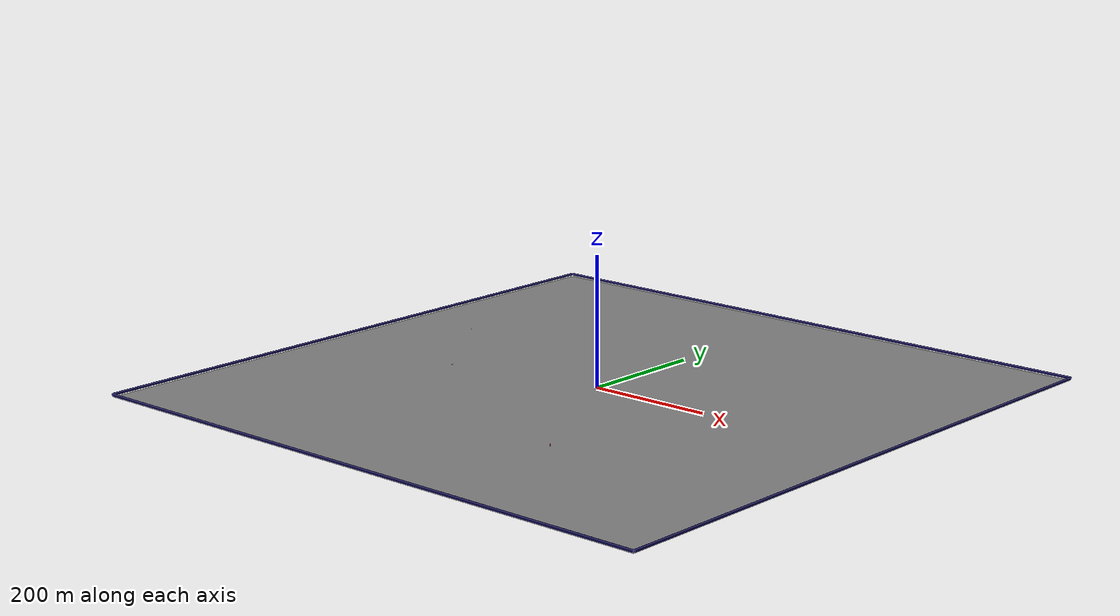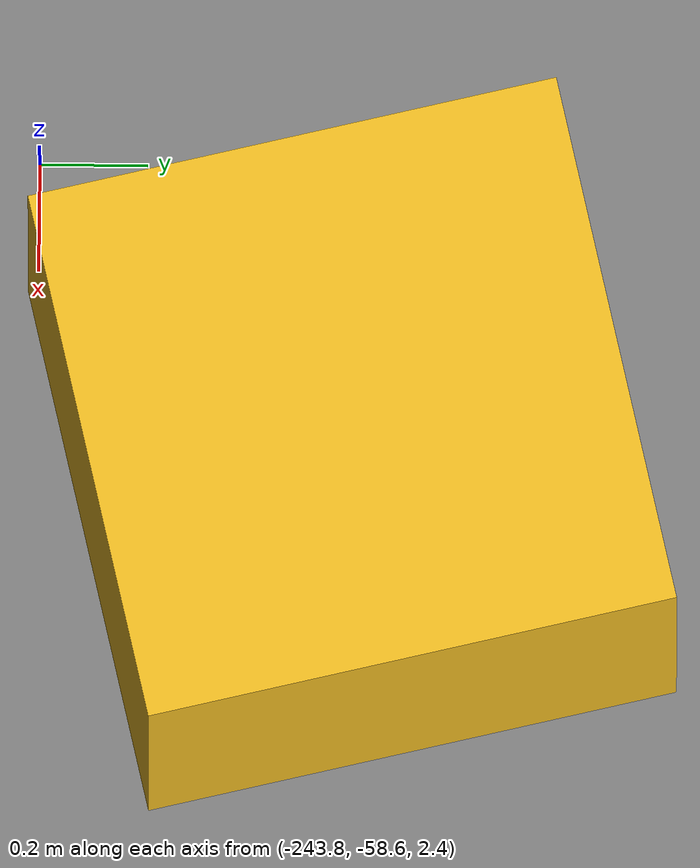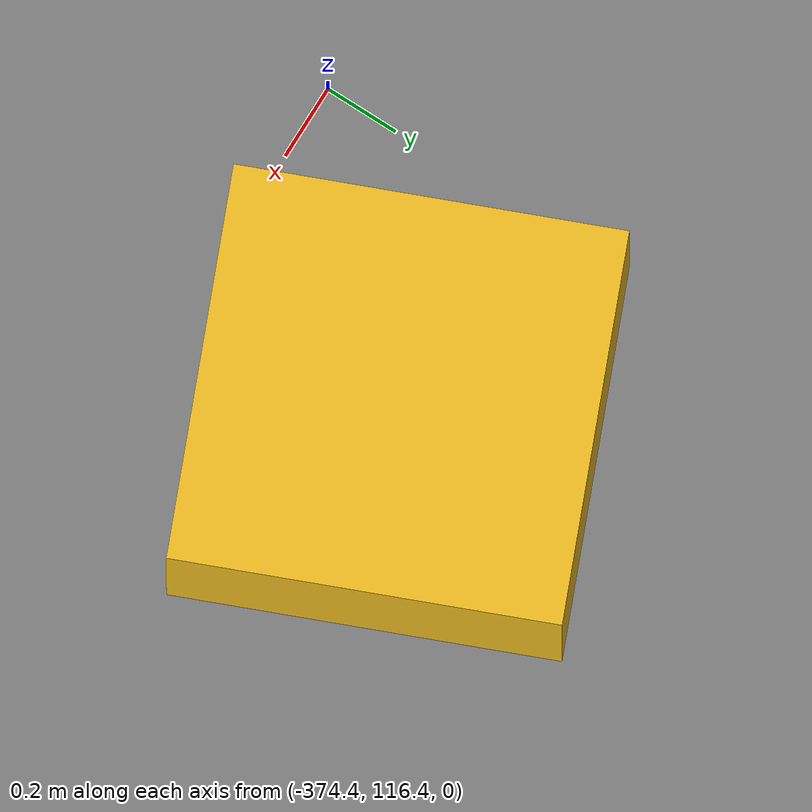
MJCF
<mujoco model="unnamed_model">
  <default>
    <default class="/" />
    <default class="border/" />
    <default class="border_1/" />
    <default class="border_2/" />
    <default class="border_3/" />
    <default class="agentplaceholder/" />
    <default class="placeholder_box/" />
    <default class="tree0/" />
    <default class="tree1/" />
    <default class="stone/" />
    <default class="stone_1/" />
  </default>
  <worldbody>
    <body name="border/">
      <body name="border/border" pos="0 501 2">
        <geom name="border/border_geom" class="border/" type="box" size="500 1 2" rgba="0.035000000000000003 0.016 0.28999999999999998 1" />
      </body>
    </body>
    <body name="border_1/">
      <body name="border_1/border" pos="0 -501 2">
        <geom name="border_1/border_geom" class="border_1/" type="box" size="500 1 2" rgba="0.035000000000000003 0.016 0.28999999999999998 1" />
      </body>
    </body>
    <body name="border_2/">
      <body name="border_2/border" pos="501 0 2">
        <geom name="border_2/border_geom" class="border_2/" type="box" size="1 500 2" rgba="0.035000000000000003 0.016 0.28999999999999998 1" />
      </body>
    </body>
    <body name="border_3/">
      <body name="border_3/border" pos="-501 0 2">
        <geom name="border_3/border_geom" class="border_3/" type="box" size="1 500 2" rgba="0.035000000000000003 0.016 0.28999999999999998 1" />
      </body>
    </body>
    <body euler="0 0 13.418800835599342" name="agentplaceholder/">
      <joint name="agentplaceholder/boxagent_freeJoint/" class="/" type="free" />
      <body name="agentplaceholder/agentplaceholder" pos="-250 0 3" euler="0 0 0">
        <geom name="agentplaceholder/boxagent_geom" class="agentplaceholder/" type="box" size="0.5 0.5 0.5" rgba="0.94899999999999995 0.74509999999999998 0.1333 1" euler="0 0 0" />
      </body>
    </body>
    <body name="placeholder_box/">
      <body name="placeholder_box/placeholder_box" pos="-373.76884999999999 117.00409999999999 0.5" euler="0 0 22.612262515732539">
        <geom name="placeholder_box/box_geom" class="placeholder_box/" type="box" size="0.5 0.5 0.5" rgba="0.94899999999999995 0.74509999999999998 0.1333 1" euler="0 0 0" />
      </body>
    </body>
    <body name="tree0/">
      <body name="tree0/tree0" pos="214.00344999999999 -497.33010000000002 0.10000000000000001" euler="0 0 72.359214088978405">
        <geom name="tree0/tree_geom" class="tree0/" type="box" size="0.10000000000000001 0.10000000000000001 2" rgba="1 0 0 1" />
      </body>
    </body>
    <body name="tree1/">
      <body name="tree1/tree1" pos="138.02940000000001 -253.07470000000001 0.10000000000000001" euler="0 0 -114.51652116009917">
        <geom name="tree1/tree_geom" class="tree1/" type="box" size="0.10000000000000001 0.10000000000000001 2" rgba="1 0 0 1" />
      </body>
    </body>
    <body name="stone/">
      <body name="stone/stone" pos="296.77625 -461.35090000000002 0.10000000000000001" euler="0 0 -54.108807692519946">
        <geom name="stone/stone_geom" class="stone/" type="box" size="0.10000000000000001 0.10000000000000001 2" rgba="1 0 0 1" />
      </body>
    </body>
    <body name="stone_1/">
      <body name="stone_1/stone" pos="204.80199999999999 65.259999999999991 0.10000000000000001" euler="0 0 155.94404415787062">
        <geom name="stone_1/stone_geom" class="stone_1/" type="box" size="0.10000000000000001 0.10000000000000001 2" rgba="1 0 0 1" />
      </body>
    </body>
    <geom name="base_plane" class="/" type="plane" size="500 500 0.10000000000000001" />
  </worldbody>
</mujoco>
